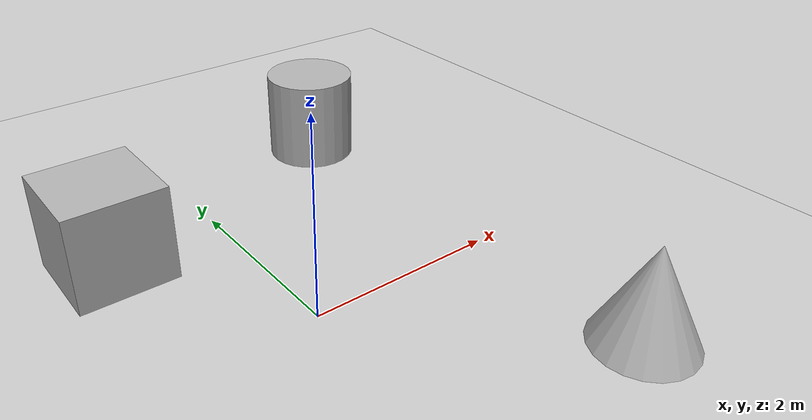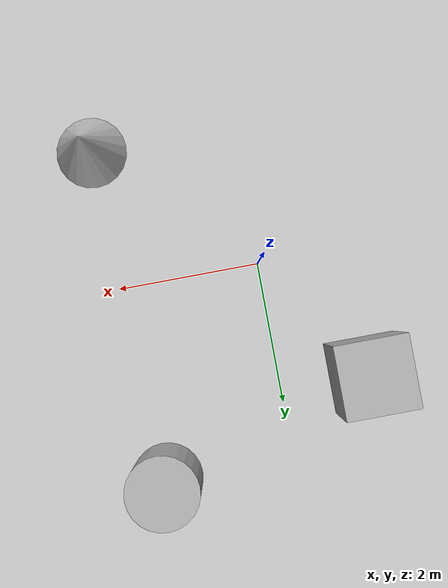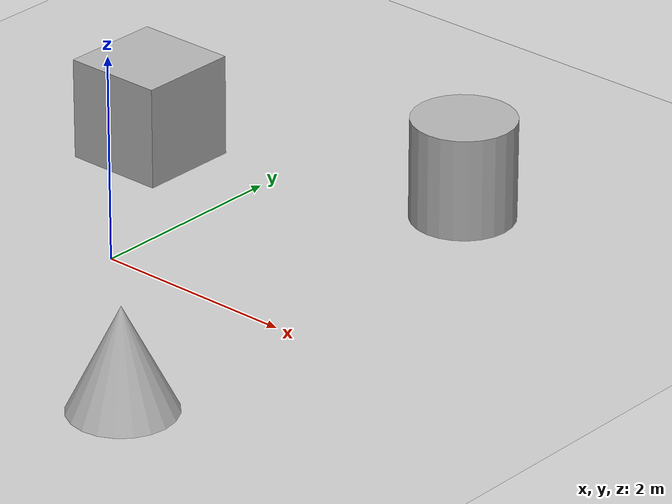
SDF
<sdf version='1.10'>
  <world name='default'>
    <plugin name='gz::sim::systems::Physics' filename='gz-sim-physics-system'/>
    <plugin name='gz::sim::systems::UserCommands' filename='gz-sim-user-commands-system'/>
    <plugin name='gz::sim::systems::SceneBroadcaster' filename='gz-sim-scene-broadcaster-system'/>
    <plugin name='gz::sim::systems::Sensors' filename='gz-sim-sensors-system'>
      <render_engine>ogre2</render_engine>
    </plugin>
    <plugin name='gz::sim::systems::Imu' filename='gz-sim-imu-system'/>
    <gravity>0 0 -9.8000000000000007</gravity>
    <magnetic_field>5.5644999999999998e-06 2.2875799999999999e-05 -4.2388400000000002e-05</magnetic_field>
    <atmosphere type='adiabatic'/>
    <physics type='ode'>
      <max_step_size>0.02</max_step_size>
      <real_time_factor>1</real_time_factor>
      <real_time_update_rate>50</real_time_update_rate>
    </physics>
    <scene>
      <ambient>0.400000006 0.400000006 0.400000006 1</ambient>
      <background>0.699999988 0.699999988 0.699999988 1</background>
      <shadows>true</shadows>
    </scene>
    <model name='ground_plane'>
      <static>true</static>
      <link name='link'>
        <collision name='collision'>
          <geometry>
            <plane>
              <normal>0 0 1</normal>
              <size>100 100</size>
            </plane>
          </geometry>
          <surface>
            <friction>
              <ode>
                <mu>0</mu>
                <mu2>0</mu2>
              </ode>
            </friction>
            <bounce/>
            <contact/>
          </surface>
        </collision>
        <visual name='visual'>
          <geometry>
            <plane>
              <normal>0 0 1</normal>
              <size>100 100</size>
            </plane>
          </geometry>
          <material>
            <ambient>0.800000012 0.800000012 0.800000012 1</ambient>
            <diffuse>0.800000012 0.800000012 0.800000012 1</diffuse>
            <specular>0.800000012 0.800000012 0.800000012 1</specular>
          </material>
        </visual>
        <pose>0 0 0 0 0 0</pose>
        <inertial>
          <pose>0 0 0 0 0 0</pose>
          <mass>1</mass>
          <inertia>
            <ixx>1</ixx>
            <ixy>0</ixy>
            <ixz>0</ixz>
            <iyy>1</iyy>
            <iyz>0</iyz>
            <izz>1</izz>
          </inertia>
        </inertial>
        <enable_wind>false</enable_wind>
      </link>
      <pose>0 0 0 0 0 0</pose>
      <self_collide>false</self_collide>
    </model>
    <model name='cylinder'>
      <pose>1.8066390923562432 2.758456583611971 0.49999942638036005 2.290358498803399e-19 1.9715996219413543e-19 -1.594640740525719e-36</pose>
      <link name='cylinder_link'>
        <inertial>
          <inertia>
            <ixx>0.14580000000000001</ixx>
            <ixy>0</ixy>
            <ixz>0</ixz>
            <iyy>0.14580000000000001</iyy>
            <iyz>0</iyz>
            <izz>0.125</izz>
          </inertia>
          <mass>1</mass>
          <pose>0 0 0 0 0 0</pose>
        </inertial>
        <collision name='cylinder_collision'>
          <geometry>
            <cylinder>
              <radius>0.5</radius>
              <length>1</length>
            </cylinder>
          </geometry>
          <surface>
            <friction>
              <ode/>
            </friction>
            <bounce/>
            <contact/>
          </surface>
        </collision>
        <visual name='cylinder_visual'>
          <geometry>
            <cylinder>
              <radius>0.5</radius>
              <length>1</length>
            </cylinder>
          </geometry>
          <material>
            <ambient>0.300000012 0.300000012 0.300000012 1</ambient>
            <diffuse>0.699999988 0.699999988 0.699999988 1</diffuse>
            <specular>1 1 1 1</specular>
          </material>
        </visual>
        <pose>0 0 0 0 0 0</pose>
        <enable_wind>false</enable_wind>
      </link>
      <static>false</static>
      <self_collide>false</self_collide>
    </model>
    <model name='cone'>
      <pose>2.0299943448894178 -1.9794592883960873 0.49999999993295235 5.2598261394513444e-17 -7.7205744403919881e-10 -2.0304439626576858e-26</pose>
      <link name='cone_link'>
        <inertial>
          <inertia>
            <ixx>0.074999999999999997</ixx>
            <ixy>0</ixy>
            <ixz>0</ixz>
            <iyy>0.074999999999999997</iyy>
            <iyz>0</iyz>
            <izz>0.074999999999999997</izz>
          </inertia>
          <mass>1</mass>
          <pose>0 0 0 0 0 0</pose>
        </inertial>
        <collision name='cone_collision'>
          <geometry>
            <cone>
              <radius>0.5</radius>
              <length>1</length>
            </cone>
          </geometry>
          <surface>
            <friction>
              <ode/>
            </friction>
            <bounce/>
            <contact/>
          </surface>
        </collision>
        <visual name='cone_visual'>
          <geometry>
            <cone>
              <radius>0.5</radius>
              <length>1</length>
            </cone>
          </geometry>
          <material>
            <ambient>0.300000012 0.300000012 0.300000012 1</ambient>
            <diffuse>0.699999988 0.699999988 0.699999988 1</diffuse>
            <specular>1 1 1 1</specular>
          </material>
        </visual>
        <pose>0 0 0 0 0 0</pose>
        <enable_wind>false</enable_wind>
      </link>
      <static>false</static>
      <self_collide>false</self_collide>
    </model>
    <model name='box_0'>
      <pose>-1.2056368901351544 1.7896887216988699 0.49999999990199806 0 0 0</pose>
      <link name='box_link'>
        <inertial>
          <inertia>
            <ixx>0.16666</ixx>
            <ixy>0</ixy>
            <ixz>0</ixz>
            <iyy>0.16666</iyy>
            <iyz>0</iyz>
            <izz>0.16666</izz>
          </inertia>
          <mass>1</mass>
          <pose>0 0 0 0 0 0</pose>
        </inertial>
        <collision name='box_collision'>
          <geometry>
            <box>
              <size>1 1 1</size>
            </box>
          </geometry>
          <surface>
            <friction>
              <ode/>
            </friction>
            <bounce/>
            <contact/>
          </surface>
        </collision>
        <visual name='box_visual'>
          <geometry>
            <box>
              <size>1 1 1</size>
            </box>
          </geometry>
          <material>
            <ambient>0.300000012 0.300000012 0.300000012 1</ambient>
            <diffuse>0.699999988 0.699999988 0.699999988 1</diffuse>
            <specular>1 1 1 1</specular>
          </material>
        </visual>
        <pose>0 0 0 0 0 0</pose>
        <enable_wind>false</enable_wind>
      </link>
      <static>false</static>
      <self_collide>false</self_collide>
    </model>
    <light name='sun' type='directional'>
      <pose>0 0 10 0 0 0</pose>
      <cast_shadows>true</cast_shadows>
      <intensity>1</intensity>
      <direction>-0.5 0.10000000000000001 -0.90000000000000002</direction>
      <diffuse>1 1 1 1</diffuse>
      <specular>0.5 0.5 0.5 1</specular>
      <attenuation>
        <range>1000</range>
        <linear>0.01</linear>
        <constant>0.90000000000000002</constant>
        <quadratic>0.001</quadratic>
      </attenuation>
      <spot>
        <inner_angle>0</inner_angle>
        <outer_angle>0</outer_angle>
        <falloff>0</falloff>
      </spot>
    </light>
  </world>
</sdf>
